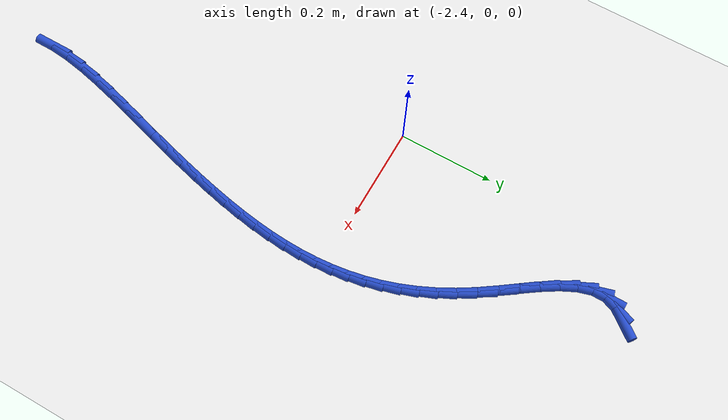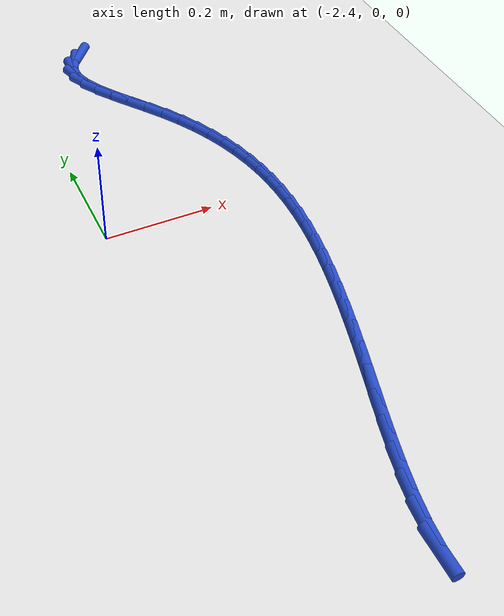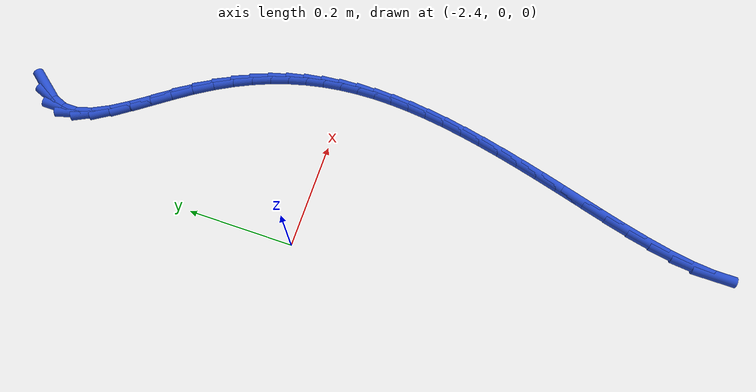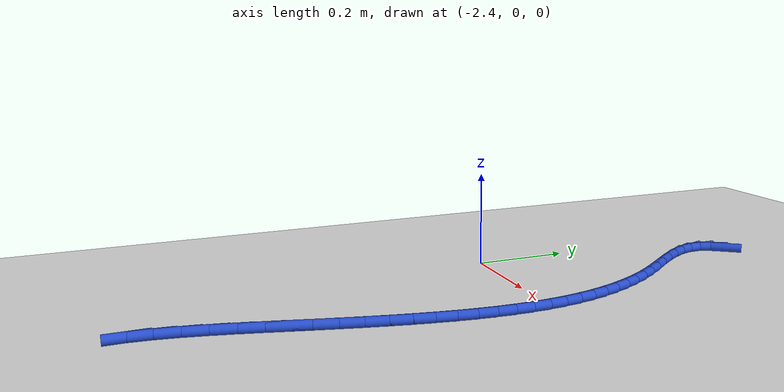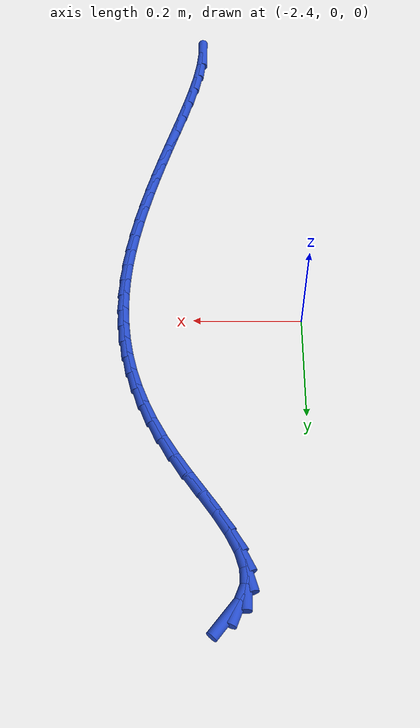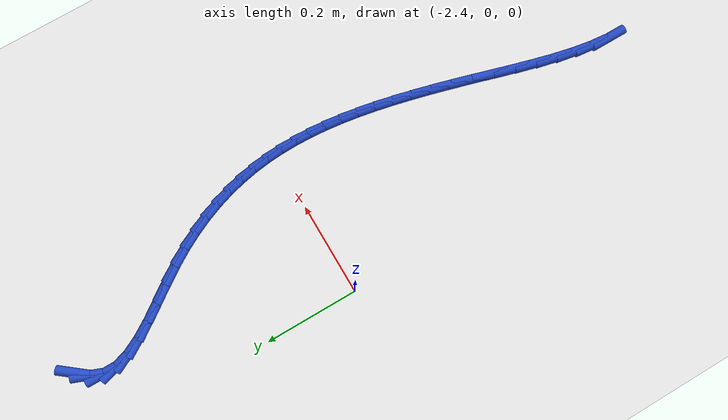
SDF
<sdf version="1.6">
 <world name="default">
  <model name="ground_plane">
   <static>1</static>
   <link name="link">
    <collision name="collision">
     <geometry><plane><normal>0 0 1</normal><size>100 100</size></plane></geometry>
     <surface><friction><ode><mu>100</mu><mu2>50</mu2></ode></friction></surface>
    </collision>
    <visual name="visual">
     <cast_shadows>0</cast_shadows>
     <geometry><plane><normal>0 0 1</normal><size>100 100</size></plane></geometry>
     <material>
      <script><uri>file://media/materials/scripts/gazebo.material</uri><name>Gazebo/WhiteGlow</name></script>
     </material>
    </visual>
   </link>
  </model>
  <model name="line">
   <link name="link_88">
    <pose>-2.2613540818255706 0.5549628451693154 0.01 0 1.57 0.9023939541753669</pose>
    <collision name="collision">
     <geometry><cylinder><radius>0.01</radius><length>0.08</length></cylinder></geometry>
    </collision>
    <visual name="visual">
     <material>
      <script><name>Gazebo/Blue</name><uri>file://media/materials/scripts/gazebo.material</uri></script>
     </material>
     <geometry><cylinder><radius>0.01</radius><length>0.08</length></cylinder></geometry>
    </visual>
   </link>
   <link name="link_89">
    <pose>-2.2795950925590827 0.5318629303138487 0.01 0 1.57 1.1992780549242128</pose>
    <collision name="collision">
     <geometry><cylinder><radius>0.01</radius><length>0.08</length></cylinder></geometry>
    </collision>
    <visual name="visual">
     <material>
      <script><name>Gazebo/Blue</name><uri>file://media/materials/scripts/gazebo.material</uri></script>
     </material>
     <geometry><cylinder><radius>0.01</radius><length>0.08</length></cylinder></geometry>
    </visual>
   </link>
   <link name="link_90">
    <pose>-2.2893699260855294 0.5067742218373799 0.01 0 1.57 1.5658764252955046</pose>
    <collision name="collision">
     <geometry><cylinder><radius>0.01</radius><length>0.08</length></cylinder></geometry>
    </collision>
    <visual name="visual">
     <material>
      <script><name>Gazebo/Blue</name><uri>file://media/materials/scripts/gazebo.material</uri></script>
     </material>
     <geometry><cylinder><radius>0.01</radius><length>0.08</length></cylinder></geometry>
    </visual>
   </link>
   <link name="link_91">
    <pose>-2.289504278223832 0.4794665502711252 0.01 0 1.57 -1.2825446229990702</pose>
    <collision name="collision">
     <geometry><cylinder><radius>0.01</radius><length>0.08</length></cylinder></geometry>
    </collision>
    <visual name="visual">
     <material>
      <script><name>Gazebo/Blue</name><uri>file://media/materials/scripts/gazebo.material</uri></script>
     </material>
     <geometry><cylinder><radius>0.01</radius><length>0.08</length></cylinder></geometry>
    </visual>
   </link>
   <link name="link_92">
    <pose>-2.2807972557975162 0.450101508814637 0.01 0 1.57 -1.1049607791867386</pose>
    <collision name="collision">
     <geometry><cylinder><radius>0.01</radius><length>0.08</length></cylinder></geometry>
    </collision>
    <visual name="visual">
     <material>
      <script><name>Gazebo/Blue</name><uri>file://media/materials/scripts/gazebo.material</uri></script>
     </material>
     <geometry><cylinder><radius>0.01</radius><length>0.08</length></cylinder></geometry>
    </visual>
   </link>
   <link name="link_93">
    <pose>-2.2651958169598725 0.4190685627624063 0.01 0 1.57 -1.0046249370908606</pose>
    <collision name="collision">
     <geometry><cylinder><radius>0.01</radius><length>0.08</length></cylinder></geometry>
    </collision>
    <visual name="visual">
     <material>
      <script><name>Gazebo/Blue</name><uri>file://media/materials/scripts/gazebo.material</uri></script>
     </material>
     <geometry><cylinder><radius>0.01</radius><length>0.08</length></cylinder></geometry>
    </visual>
   </link>
   <link name="link_94">
    <pose>-2.2446611340201894 0.3867599992112114 0.01 0 1.57 -0.9545830559526337</pose>
    <collision name="collision">
     <geometry><cylinder><radius>0.01</radius><length>0.08</length></cylinder></geometry>
    </collision>
    <visual name="visual">
     <material>
      <script><name>Gazebo/Blue</name><uri>file://media/materials/scripts/gazebo.material</uri></script>
     </material>
     <geometry><cylinder><radius>0.01</radius><length>0.08</length></cylinder></geometry>
    </visual>
   </link>
   <link name="link_95">
    <pose>-2.221154379287756 0.353568105257829 0.01 0 1.57 -0.9415929163186542</pose>
    <collision name="collision">
     <geometry><cylinder><radius>0.01</radius><length>0.08</length></cylinder></geometry>
    </collision>
    <visual name="visual">
     <material>
      <script><name>Gazebo/Blue</name><uri>file://media/materials/scripts/gazebo.material</uri></script>
     </material>
     <geometry><cylinder><radius>0.01</radius><length>0.08</length></cylinder></geometry>
    </visual>
   </link>
   <link name="link_96">
    <pose>-2.196636725071864 0.3198851679990372 0.01 0 1.57 -0.9616553987253521</pose>
    <collision name="collision">
     <geometry><cylinder><radius>0.01</radius><length>0.08</length></cylinder></geometry>
    </collision>
    <visual name="visual">
     <material>
      <script><name>Gazebo/Blue</name><uri>file://media/materials/scripts/gazebo.material</uri></script>
     </material>
     <geometry><cylinder><radius>0.01</radius><length>0.08</length></cylinder></geometry>
    </visual>
   </link>
   <link name="link_97">
    <pose>-2.1730692131092937 0.2861034450836528 0.01 0 1.57 -1.0102687768695662</pose>
    <collision name="collision">
     <geometry><cylinder><radius>0.01</radius><length>0.08</length></cylinder></geometry>
    </collision>
    <visual name="visual">
     <material>
      <script><name>Gazebo/Blue</name><uri>file://media/materials/scripts/gazebo.material</uri></script>
     </material>
     <geometry><cylinder><radius>0.01</radius><length>0.08</length></cylinder></geometry>
    </visual>
   </link>
   <link name="link_98">
    <pose>-2.1519891688113115 0.25251963360276775 0.01 0 1.57 -1.066751540448809</pose>
    <collision name="collision">
     <geometry><cylinder><radius>0.01</radius><length>0.08</length></cylinder></geometry>
    </collision>
    <visual name="visual">
     <material>
      <script><name>Gazebo/Blue</name><uri>file://media/materials/scripts/gazebo.material</uri></script>
     </material>
     <geometry><cylinder><radius>0.01</radius><length>0.08</length></cylinder></geometry>
    </visual>
   </link>
   <link name="link_99">
    <pose>-2.1335684271473987 0.21912247218487627 0.01 0 1.57 -1.1260154734263697</pose>
    <collision name="collision">
     <geometry><cylinder><radius>0.01</radius><length>0.08</length></cylinder></geometry>
    </collision>
    <visual name="visual">
     <material>
      <script><name>Gazebo/Blue</name><uri>file://media/materials/scripts/gazebo.material</uri></script>
     </material>
     <geometry><cylinder><radius>0.01</radius><length>0.08</length></cylinder></geometry>
    </visual>
   </link>
   <link name="link_100">
    <pose>-2.117704282237479 0.1858387823806481 0.01 0 1.57 -1.187365775276839</pose>
    <collision name="collision">
     <geometry><cylinder><radius>0.01</radius><length>0.08</length></cylinder></geometry>
    </collision>
    <visual name="visual">
     <material>
      <script><name>Gazebo/Blue</name><uri>file://media/materials/scripts/gazebo.material</uri></script>
     </material>
     <geometry><cylinder><radius>0.01</radius><length>0.08</length></cylinder></geometry>
    </visual>
   </link>
   <link name="link_101">
    <pose>-2.1042940282014766 0.15259538574075468 0.01 0 1.57 -1.2499392401147815</pose>
    <collision name="collision">
     <geometry><cylinder><radius>0.01</radius><length>0.08</length></cylinder></geometry>
    </collision>
    <visual name="visual">
     <material>
      <script><name>Gazebo/Blue</name><uri>file://media/materials/scripts/gazebo.material</uri></script>
     </material>
     <geometry><cylinder><radius>0.01</radius><length>0.08</length></cylinder></geometry>
    </visual>
   </link>
   <link name="link_102">
    <pose>-2.0932349591593153 0.11931910381586579 0.01 0 1.57 -1.3127510024799658</pose>
    <collision name="collision">
     <geometry><cylinder><radius>0.01</radius><length>0.08</length></cylinder></geometry>
    </collision>
    <visual name="visual">
     <material>
      <script><name>Gazebo/Blue</name><uri>file://media/materials/scripts/gazebo.material</uri></script>
     </material>
     <geometry><cylinder><radius>0.01</radius><length>0.08</length></cylinder></geometry>
    </visual>
   </link>
   <link name="link_103">
    <pose>-2.0844243692309203 0.08593675815665282 0.01 0 1.57 -1.3747620351923138</pose>
    <collision name="collision">
     <geometry><cylinder><radius>0.01</radius><length>0.08</length></cylinder></geometry>
    </collision>
    <visual name="visual">
     <material>
      <script><name>Gazebo/Blue</name><uri>file://media/materials/scripts/gazebo.material</uri></script>
     </material>
     <geometry><cylinder><radius>0.01</radius><length>0.08</length></cylinder></geometry>
    </visual>
   </link>
   <link name="link_104">
    <pose>-2.077759552536215 0.05237517031378556 0.01 0 1.57 -1.4349565669418225</pose>
    <collision name="collision">
     <geometry><cylinder><radius>0.01</radius><length>0.08</length></cylinder></geometry>
    </collision>
    <visual name="visual">
     <material>
      <script><name>Gazebo/Blue</name><uri>file://media/materials/scripts/gazebo.material</uri></script>
     </material>
     <geometry><cylinder><radius>0.01</radius><length>0.08</length></cylinder></geometry>
    </visual>
   </link>
   <link name="link_105">
    <pose>-2.0731378031951233 0.01856116183793545 0.01 0 1.57 -1.4924153872030097</pose>
    <collision name="collision">
     <geometry><cylinder><radius>0.01</radius><length>0.08</length></cylinder></geometry>
    </collision>
    <visual name="visual">
     <material>
      <script><name>Gazebo/Blue</name><uri>file://media/materials/scripts/gazebo.material</uri></script>
     </material>
     <geometry><cylinder><radius>0.01</radius><length>0.08</length></cylinder></geometry>
    </visual>
   </link>
   <link name="link_106">
    <pose>-2.0704564153275697 -0.015578445720227749 0.01 0 1.57 -1.5463723563459548</pose>
    <collision name="collision">
     <geometry><cylinder><radius>0.01</radius><length>0.08</length></cylinder></geometry>
    </collision>
    <visual name="visual">
     <material>
      <script><name>Gazebo/Blue</name><uri>file://media/materials/scripts/gazebo.material</uri></script>
     </material>
     <geometry><cylinder><radius>0.01</radius><length>0.08</length></cylinder></geometry>
    </visual>
   </link>
   <link name="link_107">
    <pose>-2.0696126830534785 -0.05011683081003259 0.01 0 1.57 1.5453459888651182</pose>
    <collision name="collision">
     <geometry><cylinder><radius>0.01</radius><length>0.08</length></cylinder></geometry>
    </collision>
    <visual name="visual">
     <material>
      <script><name>Gazebo/Blue</name><uri>file://media/materials/scripts/gazebo.material</uri></script>
     </material>
     <geometry><cylinder><radius>0.01</radius><length>0.08</length></cylinder></geometry>
    </visual>
   </link>
   <link name="link_108">
    <pose>-2.0705039004927737 -0.08512717188080936 0.01 0 1.57 1.4999426249824992</pose>
    <collision name="collision">
     <geometry><cylinder><radius>0.01</radius><length>0.08</length></cylinder></geometry>
    </collision>
    <visual name="visual">
     <material>
      <script><name>Gazebo/Blue</name><uri>file://media/materials/scripts/gazebo.material</uri></script>
     </material>
     <geometry><cylinder><radius>0.01</radius><length>0.08</length></cylinder></geometry>
    </visual>
   </link>
   <link name="link_109">
    <pose>-2.0730273617653796 -0.12068264738188653 0.01 0 1.57 1.4592192365630559</pose>
    <collision name="collision">
     <geometry><cylinder><radius>0.01</radius><length>0.08</length></cylinder></geometry>
    </collision>
    <visual name="visual">
     <material>
      <script><name>Gazebo/Blue</name><uri>file://media/materials/scripts/gazebo.material</uri></script>
     </material>
     <geometry><cylinder><radius>0.01</radius><length>0.08</length></cylinder></geometry>
    </visual>
   </link>
   <link name="link_110">
    <pose>-2.0770803609912205 -0.1568564357625945 0.01 0 1.57 1.4232320429667793</pose>
    <collision name="collision">
     <geometry><cylinder><radius>0.01</radius><length>0.08</length></cylinder></geometry>
    </collision>
    <visual name="visual">
     <material>
      <script><name>Gazebo/Blue</name><uri>file://media/materials/scripts/gazebo.material</uri></script>
     </material>
     <geometry><cylinder><radius>0.01</radius><length>0.08</length></cylinder></geometry>
    </visual>
   </link>
   <link name="link_111">
    <pose>-2.08256019229022 -0.19372171547226164 0.01 0 1.57 1.3919166984601175</pose>
    <collision name="collision">
     <geometry><cylinder><radius>0.01</radius><length>0.08</length></cylinder></geometry>
    </collision>
    <visual name="visual">
     <material>
      <script><name>Gazebo/Blue</name><uri>file://media/materials/scripts/gazebo.material</uri></script>
     </material>
     <geometry><cylinder><radius>0.01</radius><length>0.08</length></cylinder></geometry>
    </visual>
   </link>
   <link name="link_112">
    <pose>-2.089364149782303 -0.23135166496021786 0.01 0 1.57 1.3651205850788317</pose>
    <collision name="collision">
     <geometry><cylinder><radius>0.01</radius><length>0.08</length></cylinder></geometry>
    </collision>
    <visual name="visual">
     <material>
      <script><name>Gazebo/Blue</name><uri>file://media/materials/scripts/gazebo.material</uri></script>
     </material>
     <geometry><cylinder><radius>0.01</radius><length>0.08</length></cylinder></geometry>
    </visual>
   </link>
   <link name="link_113">
    <pose>-2.0973895275873926 -0.26981946267579254 0.01 0 1.57 1.3426315458487526</pose>
    <collision name="collision">
     <geometry><cylinder><radius>0.01</radius><length>0.08</length></cylinder></geometry>
    </collision>
    <visual name="visual">
     <material>
      <script><name>Gazebo/Blue</name><uri>file://media/materials/scripts/gazebo.material</uri></script>
     </material>
     <geometry><cylinder><radius>0.01</radius><length>0.08</length></cylinder></geometry>
    </visual>
   </link>
   <link name="link_114">
    <pose>-2.1065336198254143 -0.30919828706831604 0.01 0 1.57 1.324201383632698</pose>
    <collision name="collision">
     <geometry><cylinder><radius>0.01</radius><length>0.08</length></cylinder></geometry>
    </collision>
    <visual name="visual">
     <material>
      <script><name>Gazebo/Blue</name><uri>file://media/materials/scripts/gazebo.material</uri></script>
     </material>
     <geometry><cylinder><radius>0.01</radius><length>0.08</length></cylinder></geometry>
    </visual>
   </link>
   <link name="link_115">
    <pose>-2.116693720616291 -0.34956131658711587 0.01 0 1.57 1.3095638274134356</pose>
    <collision name="collision">
     <geometry><cylinder><radius>0.01</radius><length>0.08</length></cylinder></geometry>
    </collision>
    <visual name="visual">
     <material>
      <script><name>Gazebo/Blue</name><uri>file://media/materials/scripts/gazebo.material</uri></script>
     </material>
     <geometry><cylinder><radius>0.01</radius><length>0.08</length></cylinder></geometry>
    </visual>
   </link>
   <link name="link_116">
    <pose>-2.1277671240799476 -0.39098172968152245 0.01 0 1.57 1.2984474703865863</pose>
    <collision name="collision">
     <geometry><cylinder><radius>0.01</radius><length>0.08</length></cylinder></geometry>
    </collision>
    <visual name="visual">
     <material>
      <script><name>Gazebo/Blue</name><uri>file://media/materials/scripts/gazebo.material</uri></script>
     </material>
     <geometry><cylinder><radius>0.01</radius><length>0.08</length></cylinder></geometry>
    </visual>
   </link>
   <link name="link_117">
    <pose>-2.139651124336308 -0.43353270480086503 0.01 0 1.57 1.2906991758485624</pose>
    <collision name="collision">
     <geometry><cylinder><radius>0.01</radius><length>0.08</length></cylinder></geometry>
    </collision>
    <visual name="visual">
     <material>
      <script><name>Gazebo/Blue</name><uri>file://media/materials/scripts/gazebo.material</uri></script>
     </material>
     <geometry><cylinder><radius>0.01</radius><length>0.08</length></cylinder></geometry>
    </visual>
   </link>
   <link name="link_118">
    <pose>-2.152234780790452 -0.47727767374652036 0.01 0 1.57 1.289627258613779</pose>
    <collision name="collision">
     <geometry><cylinder><radius>0.01</radius><length>0.08</length></cylinder></geometry>
    </collision>
    <visual name="visual">
     <material>
      <script><name>Gazebo/Blue</name><uri>file://media/materials/scripts/gazebo.material</uri></script>
     </material>
     <geometry><cylinder><radius>0.01</radius><length>0.08</length></cylinder></geometry>
    </visual>
   </link>
   <link name="link_119">
    <pose>-2.1651416232006326 -0.5219657861573934 0.01 0 1.57 1.2991156974428837</pose>
    <collision name="collision">
     <geometry><cylinder><radius>0.01</radius><length>0.08</length></cylinder></geometry>
    </collision>
    <visual name="visual">
     <material>
      <script><name>Gazebo/Blue</name><uri>file://media/materials/scripts/gazebo.material</uri></script>
     </material>
     <geometry><cylinder><radius>0.01</radius><length>0.08</length></cylinder></geometry>
    </visual>
   </link>
   <link name="link_120">
    <pose>-2.1776788770986606 -0.5669718124741596 0.01 0 1.57 1.319776701790714</pose>
    <collision name="collision">
     <geometry><cylinder><radius>0.01</radius><length>0.08</length></cylinder></geometry>
    </collision>
    <visual name="visual">
     <material>
      <script><name>Gazebo/Blue</name><uri>file://media/materials/scripts/gazebo.material</uri></script>
     </material>
     <geometry><cylinder><radius>0.01</radius><length>0.08</length></cylinder></geometry>
    </visual>
   </link>
   <link name="link_121">
    <pose>-2.189135280820907 -0.6116486416043755 0.01 0 1.57 1.353151085596824</pose>
    <collision name="collision">
     <geometry><cylinder><radius>0.01</radius><length>0.08</length></cylinder></geometry>
    </collision>
    <visual name="visual">
     <material>
      <script><name>Gazebo/Blue</name><uri>file://media/materials/scripts/gazebo.material</uri></script>
     </material>
     <geometry><cylinder><radius>0.01</radius><length>0.08</length></cylinder></geometry>
    </visual>
   </link>
   <link name="link_122">
    <pose>-2.198799572703741 -0.6553491624555987 0.01 0 1.57 1.4022257509846432</pose>
    <collision name="collision">
     <geometry><cylinder><radius>0.01</radius><length>0.08</length></cylinder></geometry>
    </collision>
    <visual name="visual">
     <material>
      <script><name>Gazebo/Blue</name><uri>file://media/materials/scripts/gazebo.material</uri></script>
     </material>
     <geometry><cylinder><radius>0.01</radius><length>0.08</length></cylinder></geometry>
    </visual>
   </link>
   <link name="link_123">
    <pose>-2.2059604910835335 -0.6974262639353835 0.01 0 1.57 1.471982720438157</pose>
    <collision name="collision">
     <geometry><cylinder><radius>0.01</radius><length>0.08</length></cylinder></geometry>
    </collision>
    <visual name="visual">
     <material>
      <script><name>Gazebo/Blue</name><uri>file://media/materials/scripts/gazebo.material</uri></script>
     </material>
     <geometry><cylinder><radius>0.01</radius><length>0.08</length></cylinder></geometry>
    </visual>
   </link>
   <link name="link_124">
    <pose>-2.2099067742966545 -0.7372328349512871 0.01 0 1.57 1.5702436845512089</pose>
    <collision name="collision">
     <geometry><cylinder><radius>0.01</radius><length>0.08</length></cylinder></geometry>
    </collision>
    <visual name="visual">
     <material>
      <script><name>Gazebo/Blue</name><uri>file://media/materials/scripts/gazebo.material</uri></script>
     </material>
     <geometry><cylinder><radius>0.01</radius><length>0.08</length></cylinder></geometry>
    </visual>
   </link>
  </model>
 </world>
</sdf>
